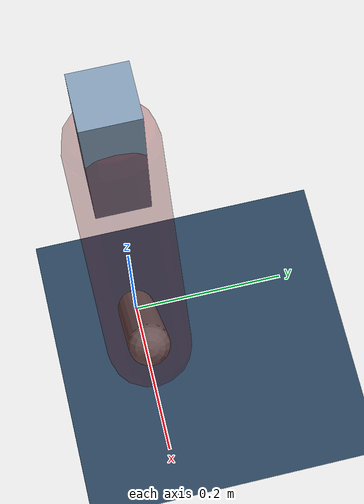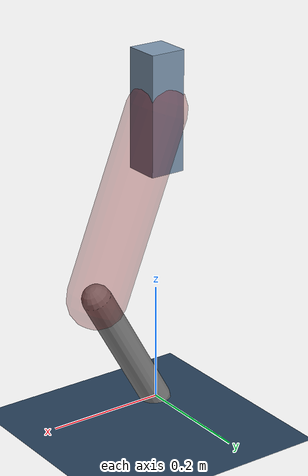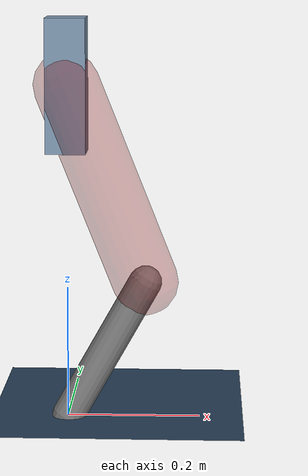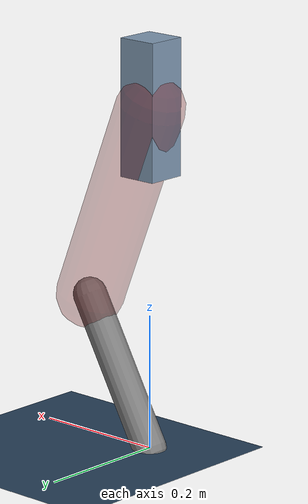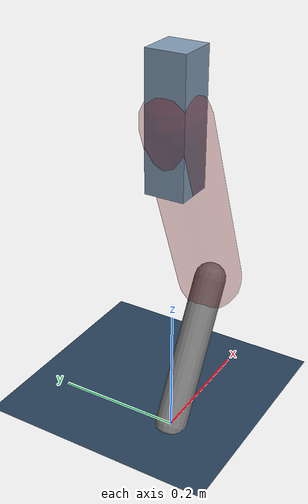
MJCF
<mujoco model="Hopper2D">
	<compiler inertiafromgeom="true" angle="radian" />
	<option timestep="0.001" integrator="implicit" cone="elliptic" solver="Newton" tolerance="1e-10" />

	<default>
		<geom contype="1" conaffinity="1" condim="3" friction="2 0.005 0.0001" solref="0.005 1" />
		<joint limited="true" damping="0.1" />
	</default>

	<asset>
		<texture name="skybox" type="skybox" builtin="gradient" rgb1=".4 .6 .8" rgb2="0 0 0" width="800" height="800" />
		<texture name="grid" type="2d" builtin="checker" rgb1=".1 .2 .3" rgb2=".2 .3 .4" width="300" height="300" mark="edge" markrgb=".2 .3 .4" />
		<material name="ground" texture="grid" texrepeat="1 1" texuniform="true" reflectance="0.1" />
		<material name="leg" rgba="0.5 0.6 0.7 1" />
	</asset>

	<worldbody>

		<geom name="floor" type="plane" size="5 5 0.25" material="ground" />

		<light directional="false" diffuse="0.8 0.8 0.8" specular="0.3 0.3 0.3" pos="0 0 2" dir="0 0 -1" />
		<light mode="targetbodycom" target="base" directional="false" diffuse="0.8 0.8 0.8" specular="0.3 0.3 0.3" pos="0 0 2" dir="0 0 -1" />

		<camera name="fixed" pos="0 -2 1" xyaxes="1 0 0 0 0 1" />
		<camera name="tracking" mode="trackcom" pos="0 -3 1" />

		<body name="root" pos="0 0 0.5063322058186563">
			<joint name="slide_x" type="slide" axis="1 0 0" range="-100 100" />
			<joint name="slide_z" type="slide" axis="0 0 1" range="0 10" />

			<body name="base" pos="0 0 0">
				<geom name="torso" type="box" size="0.03 0.03 0.1" mass="3.407" material="leg" />

				<body name="link1" pos="0 0 0" euler="0 1.1931831319082078 0">
					<joint type="hinge" axis="0 -1 0" pos="0 0 0" name="hinge1" limited="true" range="-3.14 3.14" stiffness="0" damping="0.1" />
					<geom name="thigh" type="capsule" fromto="0 0 0 0.31925489950929203 0 0" size="0.05" rgba="0.5 0 0 0.3" mass="1.0411882286750884" />

					<body name="link2" pos="0.31925489950929203 0 0" euler="0 0.889376278883832 0">
						<joint type="hinge" axis="0 -1 0" pos="0 0 0" name="hinge2" limited="true" range="-3.14 3.14" stiffness="0" damping="0.1" />
						<geom name="shank" type="capsule" fromto="0 0 0 0.24036459682193245 0 0" size="0.025" mass="0.43459167745754596" />

					</body>
				</body>
			</body>
		</body>
	</worldbody>

	<actuator>
		<motor name="torque1" joint="hinge1" ctrlrange="-165.90298610011703 165.90298610011703" ctrllimited="true" gear="1" />
		<motor name="torque2" joint="hinge2" ctrlrange="-145.69002769972857 145.69002769972857" ctrllimited="true" gear="1" />
	</actuator>
</mujoco>
